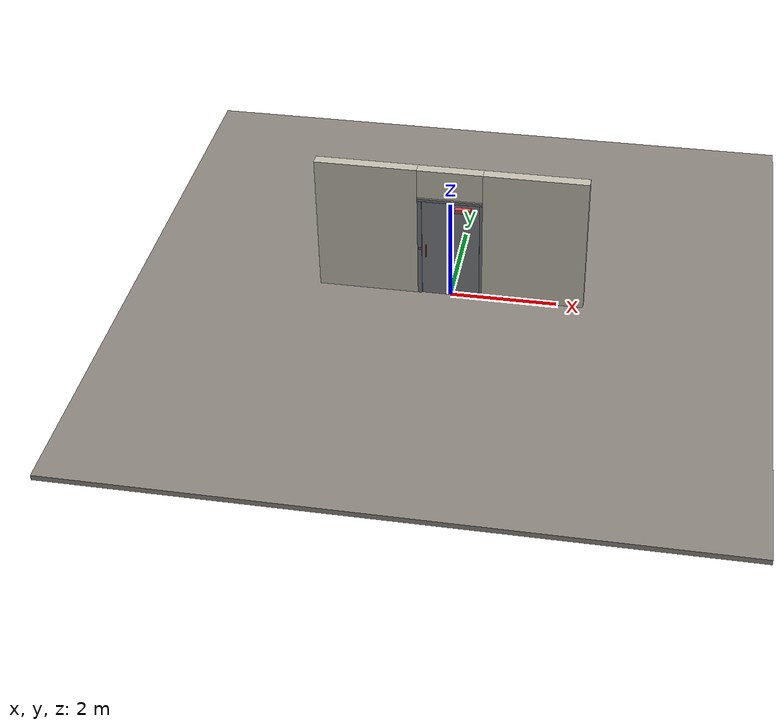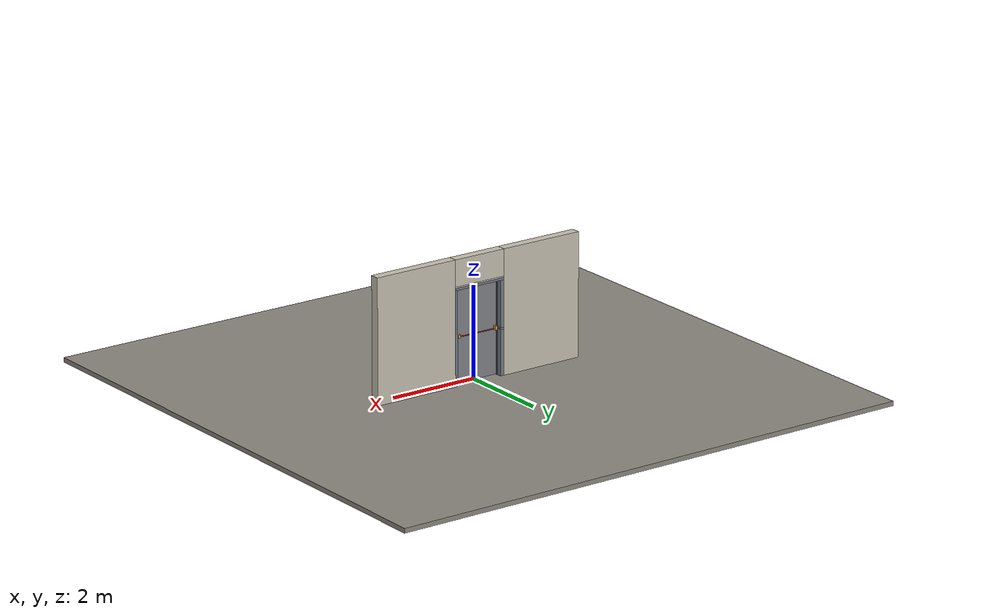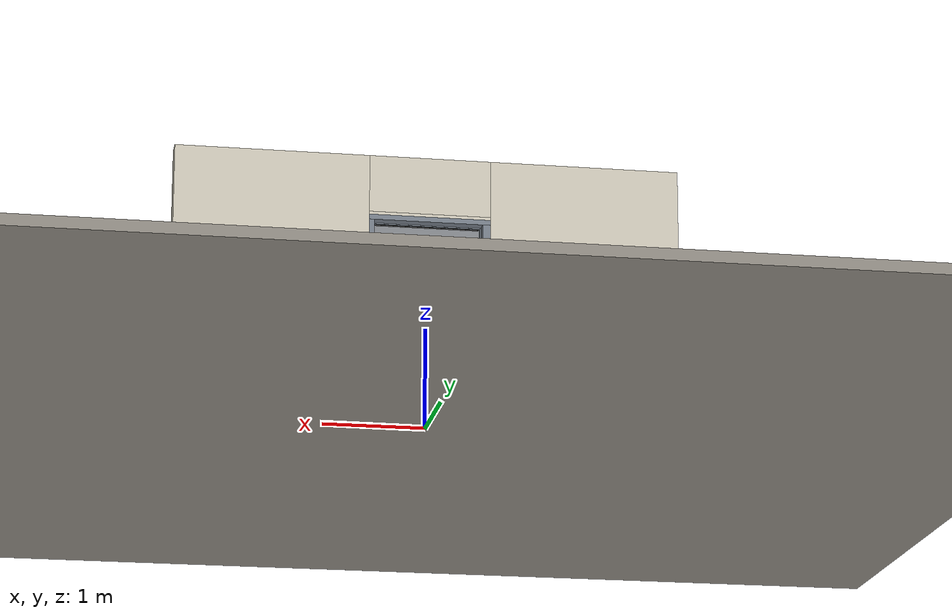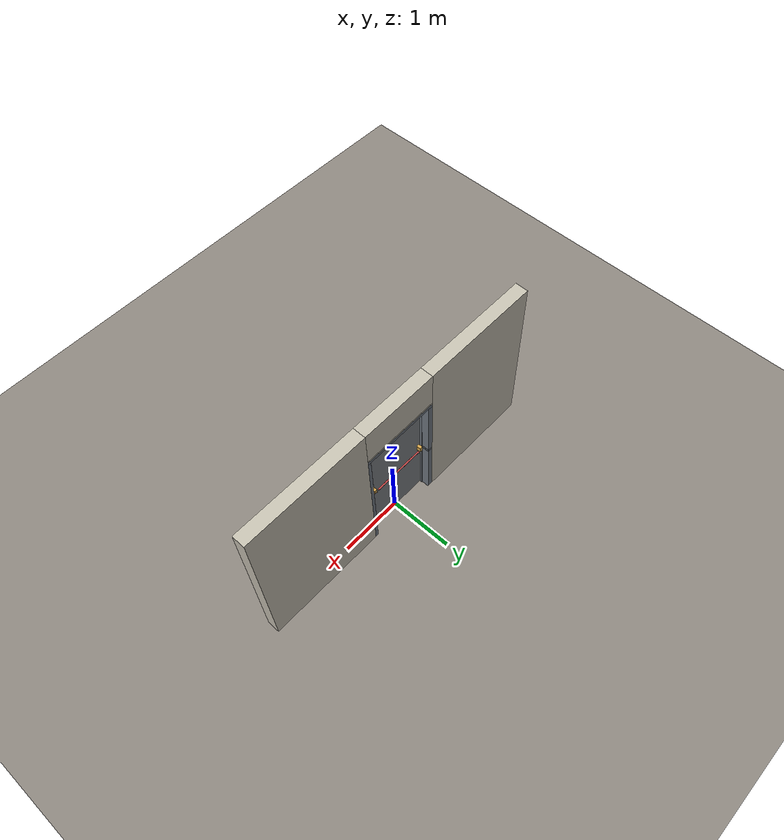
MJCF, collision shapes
<?xml version="1.0" ?>
<mujoco model="db0280_swing_single_simple">
  <compiler angle="radian" meshdir="../../hardware" texturedir="../../textures" autolimits="true" inertiafromgeom="false"/>
  <option timestep="0.002" integrator="implicitfast" cone="elliptic" impratio="10" noslip_iterations="3">
    <flag multiccd="enable"/>
  </option>
  <size memory="16M"/>
  <default>
    <geom condim="4" solref="0.005 1" solimp="0.95 0.99 0.001"/>
    <joint solreflimit="0.005 1" solimplimit="0.95 0.99 0.001"/>
    <tendon solreflimit="0.005 1"/>
    <equality solref="0.002 1"/>
  </default>
  <visual>
    <headlight ambient="0.4 0.4 0.4" diffuse="0.7 0.7 0.7" specular="0.2 0.2 0.2"/>
    <quality shadowsize="4096"/>
    <map znear="0.01" zfar="60"/>
  </visual>
  <asset>
    <mesh name="closer_body_fdc4667657" file="closer_body_fdc4667657.obj"/>
    <mesh name="crossbar_c9bf20f5d4" file="crossbar_c9bf20f5d4.obj"/>
    <mesh name="hinge_e22b26c0c1" file="hinge_e22b26c0c1.obj"/>
    <mesh name="hinge_jamb_e1d088f8dc" file="hinge_jamb_e1d088f8dc.obj"/>
    <mesh name="pull_f8d79d6331" file="pull_f8d79d6331.obj"/>
    <material name="mat_floor" rgba="0.55 0.53 0.5 1" specular="0.2" shininess="0.15" reflectance="0"/>
    <material name="mat_wall" rgba="0.78 0.76 0.7 1" specular="0.2" shininess="0.1" reflectance="0"/>
    <material name="mat_leaf" rgba="0.5 0.51 0.53 1" specular="0.2" shininess="0.49" reflectance="0"/>
    <material name="mat_hinge" rgba="0.65 0.66 0.68 1" specular="0.74" shininess="0.5" reflectance="0.36"/>
    <material name="mat_op_brass" rgba="0.85 0.66 0.3 1" specular="0.8" shininess="0.75" reflectance="0.4"/>
    <material name="mat_op_stainless" rgba="0.75 0.76 0.77 1" specular="0.8" shininess="0.65" reflectance="0.4"/>
    <material name="mat_bolt" rgba="0.75 0.76 0.77 1" specular="0.8" shininess="0.65" reflectance="0.4"/>
    <material name="mat_frame" rgba="0.45 0.48 0.52 1" specular="0.32" shininess="0.6" reflectance="0.08"/>
    <material name="mat_seal" rgba="0.1 0.1 0.1 1" specular="0.2" shininess="0.1" reflectance="0"/>
    <material name="mat_closer" rgba="0.22 0.17 0.13 1" specular="0.8" shininess="0.6" reflectance="0.4"/>
    <material name="mat_exit_sign" rgba="0.85 0.1 0.1 1" specular="0.2" shininess="0.6" reflectance="0"/>
    <material name="mat_sign_bracket" rgba="0.8 0.81 0.83 1" specular="0.8" shininess="0.6" reflectance="0.4"/>
    <texture name="skybox" type="skybox" builtin="gradient" rgb1="0.6 0.7 0.85" rgb2="0.9 0.92 0.95" width="256" height="256"/>
  </asset>
  <worldbody>
    <light name="sun" pos="1.5 -2.5 4" dir="-0.3 0.5 -0.8" directional="true" diffuse="0.8 0.8 0.8" specular="0.3 0.3 0.3" castshadow="true"/>
    <light name="fill" pos="-1.5 2.5 3" dir="0.3 -0.5 -0.7" directional="true" diffuse="0.35 0.35 0.4" castshadow="false"/>
    <camera name="robot_view" pos="0 -2.471187 1.734312" xyaxes="1 0 0 0 0.26963 0.962964" fovy="52"/>
    <camera name="far_view" pos="0 2.613187 1.734312" xyaxes="-1 0 0 0 -0.26963 0.962964" fovy="52"/>
    <camera name="iso" pos="-1.932062 -2.064437 2.141063" xyaxes="0.741536 -0.670913 0 0.242917 0.268487 0.932151" fovy="46"/>
    <camera name="detail_handle" pos="-0.263 -0.897 1.296" xyaxes="0.97561 0.219512 0 -0.070934 0.315262 0.94635" fovy="38"/>
    <geom name="floor" type="box" size="6 6 0.05" pos="0 0 -0.05" material="mat_floor" group="0" contype="1" conaffinity="1" friction="0.8 0.005 0.0001" density="2400"/>
    <geom name="wall_left" type="box" size="0.9415 0.1 1.35" pos="-1.5585 0.071 1.35" material="mat_wall" group="0" contype="1" conaffinity="1" friction="0.6 0.005 0.0001" density="800"/>
    <geom name="wall_right" type="box" size="0.9565 0.1 1.35" pos="1.5435 0.071 1.35" material="mat_wall" group="0" contype="1" conaffinity="1" friction="0.6 0.005 0.0001" density="800"/>
    <geom name="wall_header" type="box" size="0.602 0.1 0.2875" pos="-0.015 0.071 2.4125" material="mat_wall" group="0" contype="1" conaffinity="1" friction="0.6 0.005 0.0001" density="800"/>
    <geom name="hinge_0_jamb" type="mesh" mesh="hinge_jamb_e1d088f8dc" pos="0.534 -0.029 0.259" quat="0 0 1 0" material="mat_hinge" group="1" contype="0" conaffinity="0" density="7850"/>
    <geom name="hinge_1_jamb" type="mesh" mesh="hinge_jamb_e1d088f8dc" pos="0.534 -0.029 0.793" quat="0 0 1 0" material="mat_hinge" group="1" contype="0" conaffinity="0" density="7850"/>
    <geom name="hinge_2_jamb" type="mesh" mesh="hinge_jamb_e1d088f8dc" pos="0.534 -0.029 1.327" quat="0 0 1 0" material="mat_hinge" group="1" contype="0" conaffinity="0" density="7850"/>
    <geom name="hinge_3_jamb" type="mesh" mesh="hinge_jamb_e1d088f8dc" pos="0.534 -0.029 1.861" quat="0 0 1 0" material="mat_hinge" group="1" contype="0" conaffinity="0" density="7850"/>
    <geom name="jamb_hinge" type="box" size="0.025 0.1 1.0225" pos="0.562 0.071 1.0225" material="mat_frame" group="0" contype="1" conaffinity="1" friction="0.6 0.005 0.0001" density="300"/>
    <geom name="strike_1016_wall_n" type="box" size="0.04 0.08 0.02" pos="-0.577 0.091 1.016" material="mat_frame" group="0" contype="1" conaffinity="1" friction="0.6 0.005 0.0001" density="300"/>
    <geom name="strike_1016_wall_p" type="box" size="0.04 0.008 0.02" pos="-0.577 -0.019 1.016" material="mat_frame" group="0" contype="1" conaffinity="1" friction="0.6 0.005 0.0001" density="300"/>
    <geom name="strike_1016_ramp" type="box" size="0.04 0.018028 0.02" pos="-0.580282 -0.019812 1.016" quat="0.957092 0 0 -0.289784" material="mat_frame" group="0" contype="1" conaffinity="1" friction="0.12 0.005 0.0001" density="300"/>
    <geom name="strike_1016_back" type="box" size="0.0285 0.011 0.02" pos="-0.5885 0 1.016" material="mat_frame" group="0" contype="1" conaffinity="1" friction="0.6 0.005 0.0001" density="300"/>
    <geom name="jamb_strike_0" type="box" size="0.04 0.1 0.498" pos="-0.577 0.071 0.498" material="mat_frame" group="0" contype="1" conaffinity="1" friction="0.6 0.005 0.0001" density="300"/>
    <geom name="jamb_strike_1" type="box" size="0.04 0.1 0.5045" pos="-0.577 0.071 1.5405" material="mat_frame" group="0" contype="1" conaffinity="1" friction="0.6 0.005 0.0001" density="300"/>
    <geom name="jamb_head" type="box" size="0.602 0.1 0.025" pos="-0.015 0.071 2.07" material="mat_frame" group="0" contype="1" conaffinity="1" friction="0.6 0.005 0.0001" density="300"/>
    <geom name="head_stud" type="box" size="0.602 0.1 0.015" pos="-0.015 0.071 2.11" material="mat_wall" group="0" contype="1" conaffinity="1" friction="0.6 0.005 0.0001" density="500"/>
    <geom name="stop_hinge" type="box" size="0.0055 0.016 1.0225" pos="0.5315 0.0385 1.0225" material="mat_frame" group="0" contype="1" conaffinity="1" friction="0.6 0.005 0.0001" density="300"/>
    <geom name="stop_strike" type="box" size="0.0055 0.016 1.0225" pos="-0.5315 0.0385 1.0225" material="mat_frame" group="0" contype="1" conaffinity="1" friction="0.6 0.005 0.0001" density="300"/>
    <geom name="stop_head" type="box" size="0.537 0.016 0.0055" pos="0 0.0385 2.0395" material="mat_frame" group="0" contype="1" conaffinity="1" friction="0.6 0.005 0.0001" density="300"/>
    <geom name="seal_hinge" type="box" size="0.004 0.004 1.0225" pos="0.534 0.026 1.0225" material="mat_seal" group="1" contype="0" conaffinity="0" density="1100"/>
    <geom name="seal_strike" type="box" size="0.004 0.004 1.0225" pos="-0.534 0.026 1.0225" material="mat_seal" group="1" contype="0" conaffinity="0" density="1100"/>
    <geom name="seal_head" type="box" size="0.517 0.004 0.008" pos="0 0.026 2.033" material="mat_seal" group="1" contype="0" conaffinity="0" density="1100"/>
    <site name="approach_point" pos="0 -1.5 0" quat="1 0 0 0" size="0.05" rgba="0.2 0.9 0.2 0.5" group="4"/>
    <site name="goal_point" pos="0 1.5 0" quat="1 0 0 0" size="0.05" rgba="0.2 0.9 0.2 0.5" group="4"/>
    <site name="door_plane_center" pos="0 0 1.0225" quat="1 0 0 0" size="0.02" rgba="0.2 0.9 0.2 0.5" group="4"/>
    <body name="leaf" pos="0.537 0 0">
      <inertial pos="-0.48917 -0.015755 1.219379" mass="59.865488" quat="0.459338 0.479981 0.531486 -0.5255" diaginertia="5.339922547 24.427242385 29.645421817"/>
      <joint name="leaf_hinge" type="hinge" axis="0 0 1" pos="-0.003 -0.029 0" limited="true" range="0 1.745329" solreflimit="0.02 1" damping="12.475663" frictionloss="5.301062" stiffness="15.508058" springref="-1.827437" armature="0.02"/>
      <geom name="leaf_slab" type="box" size="0.5335 0.022 1.016" pos="-0.5365 0 1.025" material="mat_leaf" group="0" contype="1" conaffinity="1" friction="0.4 0.005 0.0001" density="1"/>
      <geom name="hinge_0" type="mesh" mesh="hinge_e22b26c0c1" pos="-0.003 -0.029 0.259" quat="0 0 1 0" material="mat_hinge" group="1" contype="0" conaffinity="0" density="7850"/>
      <geom name="hinge_1" type="mesh" mesh="hinge_e22b26c0c1" pos="-0.003 -0.029 0.793" quat="0 0 1 0" material="mat_hinge" group="1" contype="0" conaffinity="0" density="7850"/>
      <geom name="hinge_2" type="mesh" mesh="hinge_e22b26c0c1" pos="-0.003 -0.029 1.327" quat="0 0 1 0" material="mat_hinge" group="1" contype="0" conaffinity="0" density="7850"/>
      <geom name="hinge_3" type="mesh" mesh="hinge_e22b26c0c1" pos="-0.003 -0.029 1.861" quat="0 0 1 0" material="mat_hinge" group="1" contype="0" conaffinity="0" density="7850"/>
      <geom name="leaf_exit_device_case" type="box" size="0.022 0.033 0.045" pos="-1.025 0.055 1.016" material="mat_op_brass" group="0" contype="1" conaffinity="1" friction="0.6 0.005 0.0001" density="3000"/>
      <geom name="leaf_exit_device_end_case" type="box" size="0.022 0.03 0.035" pos="-0.11475 0.052 1.016" material="mat_op_brass" group="0" contype="1" conaffinity="1" friction="0.6 0.005 0.0001" density="3000"/>
      <geom name="leaf_far_pull_n" type="mesh" mesh="pull_f8d79d6331" pos="-0.98 -0.022 1.016" quat="0 0 -0.707107 0.707107" material="mat_op_stainless" group="1" contype="0" conaffinity="0" density="3000"/>
      <geom name="leaf_far_pull_col_n" type="capsule" size="0.0125 0.13" pos="-0.98 -0.097 1.016" material="mat_op_stainless" group="3" contype="1" conaffinity="1" rgba="0.8 0.3 0.3 0.25" friction="0.7 0.01 0.0001" density="3000"/>
      <geom name="closer_body" type="mesh" mesh="closer_body_fdc4667657" pos="-0.3 -0.022 1.952" quat="0 0 -0.707107 0.707107" material="mat_closer" group="1" contype="0" conaffinity="0" density="2000"/>
      <geom name="closer_body_col" type="box" size="0.145 0.05 0.035" pos="-0.3 -0.072 1.952" material="mat_closer" group="3" contype="1" conaffinity="1" rgba="0.8 0.3 0.3 0.25" friction="0.6 0.005 0.0001" density="2000"/>
      <site name="leaf_far_pull_grip_n" pos="-0.98 -0.097 1.016" quat="1 0 0 0" size="0.012" rgba="0.2 0.9 0.2 0.5" group="4"/>
      <site name="leaf_edge_mid" pos="-1.07 0 1.016" quat="1 0 0 0" size="0.02" rgba="0.2 0.9 0.2 0.5" group="4"/>
      <body name="leaf_exit_device" pos="-0.569875 0.022 1.016">
        <inertial pos="0 0.05821 0" mass="2.546198" quat="0 1 0 0" diaginertia="0.000388152 0.159483858 0.15968175"/>
        <joint name="leaf_exit_device_hinge" type="hinge" axis="-1 0 0" limited="true" range="0 0.35" damping="0.955383" frictionloss="0.14" stiffness="12" springref="-0.333333" armature="0.01"/>
        <geom name="leaf_exit_device_mesh" type="mesh" mesh="crossbar_c9bf20f5d4" pos="0 0 0" quat="0 0 0.707107 0.707107" material="mat_op_brass" group="1" contype="0" conaffinity="0" density="3000"/>
        <geom name="leaf_exit_device_col" type="capsule" size="0.0125 0.400125" pos="0 0.06 0" quat="0.707107 0 0.707107 0" material="mat_op_brass" group="3" contype="1" conaffinity="1" rgba="0.8 0.3 0.3 0.25" friction="0.7 0.01 0.0001" density="3000"/>
        <site name="leaf_exit_device_push" pos="0 0.06 0" quat="1 0 0 0" size="0.015" rgba="0.2 0.9 0.2 0.5" group="4"/>
      </body>
      <body name="leaf_latch_bolt" pos="-1.07 0 1.016">
        <inertial pos="0.0055 0 0" mass="0.102826" quat="0.92388 0.382683 0 0" diaginertia="0.000004365 0.000018287 0.000018287"/>
        <joint name="leaf_latch_bolt_slide" type="slide" axis="1 0 0" limited="true" range="0 0.019" damping="2" frictionloss="0.3" stiffness="800" springref="-0.01" armature="0.1"/>
        <geom name="leaf_latch_bolt_capsule" type="capsule" size="0.0095 0.015" pos="0.0055 0 0" quat="0.707107 0 -0.707107 0" material="mat_bolt" group="0" contype="1" conaffinity="1" friction="0.2 0.005 0.0001" density="8500"/>
      </body>
    </body>
  </worldbody>
  <tendon>
    <fixed name="leaf_latch_bolt_coupling" limited="true" range="0 10">
      <joint joint="leaf_latch_bolt_slide" coef="1"/>
      <joint joint="leaf_exit_device_hinge" coef="-0.059375"/>
    </fixed>
  </tendon>
  <sensor>
    <jointpos name="leaf_hinge_pos" joint="leaf_hinge"/>
    <jointvel name="leaf_hinge_vel" joint="leaf_hinge"/>
    <jointpos name="leaf_exit_device_hinge_pos" joint="leaf_exit_device_hinge"/>
    <jointvel name="leaf_exit_device_hinge_vel" joint="leaf_exit_device_hinge"/>
    <jointpos name="leaf_latch_bolt_slide_pos" joint="leaf_latch_bolt_slide"/>
    <jointvel name="leaf_latch_bolt_slide_vel" joint="leaf_latch_bolt_slide"/>
  </sensor>
</mujoco>
